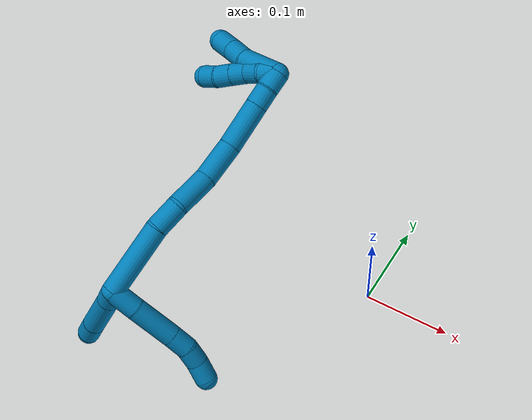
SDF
<sdf version="1.7">
 <world name="default">
  <model name="9">
   <static>0</static>
   <link name="9">
    <collision name="collision-cylinder-e_1_2_8">
     <pose>0.002015 0.000682 -0.015187 -3.0967 0.131763 -2.48558</pose>
     <geometry><cylinder><radius>0.0125</radius><length>0.030671</length></cylinder></geometry>
     <surface>
      <friction><ode><mu>1.16</mu><mu2>1.16</mu2><slip1>0</slip1><slip2>0</slip2></ode></friction>
      <contact><ode><kp>1e+06</kp><kd>1</kd><max_vel>0</max_vel><min_depth>0.001</min_depth></ode></contact>
     </surface>
    </collision>
    <visual name="visual-cylinder-e_1_2_8">
     <pose>0.002015 0.000682 -0.015187 -3.0967 0.131763 -2.48558</pose>
     <geometry><cylinder><radius>0.0125</radius><length>0.030671</length></cylinder></geometry>
     <material><ambient>0 0.490196 0.709804 1</ambient></material>
    </visual>
    <collision name="collision-cylinder-e_2_8_9">
     <pose>0.005603 0.005102 -0.055806 -2.99569 0.061147 -0.79268</pose>
     <geometry><cylinder><radius>0.0125</radius><length>0.051504</length></cylinder></geometry>
     <surface>
      <friction><ode><mu>1.16</mu><mu2>1.16</mu2><slip1>0</slip1><slip2>0</slip2></ode></friction>
      <contact><ode><kp>1e+06</kp><kd>1</kd><max_vel>0</max_vel><min_depth>0.001</min_depth></ode></contact>
     </surface>
    </collision>
    <visual name="visual-cylinder-e_2_8_9">
     <pose>0.005603 0.005102 -0.055806 -2.99569 0.061147 -0.79268</pose>
     <geometry><cylinder><radius>0.0125</radius><length>0.051504</length></cylinder></geometry>
     <material><ambient>0 0.490196 0.709804 1</ambient></material>
    </visual>
    <collision name="collision-cylinder-e_3_9_10">
     <pose>0.007588 0.010397 -0.092951 -3.00931 0.0348 -0.513843</pose>
     <geometry><cylinder><radius>0.0125</radius><length>0.02365</length></cylinder></geometry>
     <surface>
      <friction><ode><mu>1.16</mu><mu2>1.16</mu2><slip1>0</slip1><slip2>0</slip2></ode></friction>
      <contact><ode><kp>1e+06</kp><kd>1</kd><max_vel>0</max_vel><min_depth>0.001</min_depth></ode></contact>
     </surface>
    </collision>
    <visual name="visual-cylinder-e_3_9_10">
     <pose>0.007588 0.010397 -0.092951 -3.00931 0.0348 -0.513843</pose>
     <geometry><cylinder><radius>0.0125</radius><length>0.02365</length></cylinder></geometry>
     <material><ambient>0 0.490196 0.709804 1</ambient></material>
    </visual>
    <collision name="collision-cylinder-e_4_10_11">
     <pose>0.005672 0.012723 -0.114797 -3.06605 -0.225208 2.49659</pose>
     <geometry><cylinder><radius>0.0125</radius><length>0.020847</length></cylinder></geometry>
     <surface>
      <friction><ode><mu>1.16</mu><mu2>1.16</mu2><slip1>0</slip1><slip2>0</slip2></ode></friction>
      <contact><ode><kp>1e+06</kp><kd>1</kd><max_vel>0</max_vel><min_depth>0.001</min_depth></ode></contact>
     </surface>
    </collision>
    <visual name="visual-cylinder-e_4_10_11">
     <pose>0.005672 0.012723 -0.114797 -3.06605 -0.225208 2.49659</pose>
     <geometry><cylinder><radius>0.0125</radius><length>0.020847</length></cylinder></geometry>
     <material><ambient>0 0.490196 0.709804 1</ambient></material>
    </visual>
    <collision name="collision-cylinder-e_5_11_6">
     <pose>0.000354 0.0125 -0.136159 3.0537 -0.259292 -2.49101</pose>
     <geometry><cylinder><radius>0.0125</radius><length>0.023327</length></cylinder></geometry>
     <surface>
      <friction><ode><mu>1.16</mu><mu2>1.16</mu2><slip1>0</slip1><slip2>0</slip2></ode></friction>
      <contact><ode><kp>1e+06</kp><kd>1</kd><max_vel>0</max_vel><min_depth>0.001</min_depth></ode></contact>
     </surface>
    </collision>
    <visual name="visual-cylinder-e_5_11_6">
     <pose>0.000354 0.0125 -0.136159 3.0537 -0.259292 -2.49101</pose>
     <geometry><cylinder><radius>0.0125</radius><length>0.023327</length></cylinder></geometry>
     <material><ambient>0 0.490196 0.709804 1</ambient></material>
    </visual>
    <collision name="collision-cylinder-e_1_2_12">
     <pose>-0.009171 0.003161 -0.003844 -2.45336 -1.07362 2.05752</pose>
     <geometry><cylinder><radius>0.0125</radius><length>0.020868</length></cylinder></geometry>
     <surface>
      <friction><ode><mu>1.16</mu><mu2>1.16</mu2><slip1>0</slip1><slip2>0</slip2></ode></friction>
      <contact><ode><kp>1e+06</kp><kd>1</kd><max_vel>0</max_vel><min_depth>0.001</min_depth></ode></contact>
     </surface>
    </collision>
    <visual name="visual-cylinder-e_1_2_12">
     <pose>-0.009171 0.003161 -0.003844 -2.45336 -1.07362 2.05752</pose>
     <geometry><cylinder><radius>0.0125</radius><length>0.020868</length></cylinder></geometry>
     <material><ambient>0 0.490196 0.709804 1</ambient></material>
    </visual>
    <collision name="collision-cylinder-e_2_12_13">
     <pose>-0.043283 0.013344 -0.016593 -2.47392 -1.14404 2.15336</pose>
     <geometry><cylinder><radius>0.0125</radius><length>0.054798</length></cylinder></geometry>
     <surface>
      <friction><ode><mu>1.16</mu><mu2>1.16</mu2><slip1>0</slip1><slip2>0</slip2></ode></friction>
      <contact><ode><kp>1e+06</kp><kd>1</kd><max_vel>0</max_vel><min_depth>0.001</min_depth></ode></contact>
     </surface>
    </collision>
    <visual name="visual-cylinder-e_2_12_13">
     <pose>-0.043283 0.013344 -0.016593 -2.47392 -1.14404 2.15336</pose>
     <geometry><cylinder><radius>0.0125</radius><length>0.054798</length></cylinder></geometry>
     <material><ambient>0 0.490196 0.709804 1</ambient></material>
    </visual>
    <collision name="collision-cylinder-e_3_13_5">
     <pose>-0.079077 0.024026 -0.029605 -2.41352 -1.10166 2.03116</pose>
     <geometry><cylinder><radius>0.0125</radius><length>0.024334</length></cylinder></geometry>
     <surface>
      <friction><ode><mu>1.16</mu><mu2>1.16</mu2><slip1>0</slip1><slip2>0</slip2></ode></friction>
      <contact><ode><kp>1e+06</kp><kd>1</kd><max_vel>0</max_vel><min_depth>0.001</min_depth></ode></contact>
     </surface>
    </collision>
    <visual name="visual-cylinder-e_3_13_5">
     <pose>-0.079077 0.024026 -0.029605 -2.41352 -1.10166 2.03116</pose>
     <geometry><cylinder><radius>0.0125</radius><length>0.024334</length></cylinder></geometry>
     <material><ambient>0 0.490196 0.709804 1</ambient></material>
    </visual>
    <collision name="collision-cylinder-e_1_2_14">
     <pose>0.034513 0.021457 0.009154 -1.16757 0.976412 -0.674833</pose>
     <geometry><cylinder><radius>0.0125</radius><length>0.083314</length></cylinder></geometry>
     <surface>
      <friction><ode><mu>1.16</mu><mu2>1.16</mu2><slip1>0</slip1><slip2>0</slip2></ode></friction>
      <contact><ode><kp>1e+06</kp><kd>1</kd><max_vel>0</max_vel><min_depth>0.001</min_depth></ode></contact>
     </surface>
    </collision>
    <visual name="visual-cylinder-e_1_2_14">
     <pose>0.034513 0.021457 0.009154 -1.16757 0.976412 -0.674833</pose>
     <geometry><cylinder><radius>0.0125</radius><length>0.083314</length></cylinder></geometry>
     <material><ambient>0 0.490196 0.709804 1</ambient></material>
    </visual>
    <collision name="collision-cylinder-e_2_14_15">
     <pose>0.081529 0.053303 0.01898 -1.50615 0.876473 -0.827794</pose>
     <geometry><cylinder><radius>0.0125</radius><length>0.03254</length></cylinder></geometry>
     <surface>
      <friction><ode><mu>1.16</mu><mu2>1.16</mu2><slip1>0</slip1><slip2>0</slip2></ode></friction>
      <contact><ode><kp>1e+06</kp><kd>1</kd><max_vel>0</max_vel><min_depth>0.001</min_depth></ode></contact>
     </surface>
    </collision>
    <visual name="visual-cylinder-e_2_14_15">
     <pose>0.081529 0.053303 0.01898 -1.50615 0.876473 -0.827794</pose>
     <geometry><cylinder><radius>0.0125</radius><length>0.03254</length></cylinder></geometry>
     <material><ambient>0 0.490196 0.709804 1</ambient></material>
    </visual>
    <collision name="collision-cylinder-e_3_15_16">
     <pose>0.106593 0.081927 0.018264 -1.64679 0.601826 -0.646256</pose>
     <geometry><cylinder><radius>0.0125</radius><length>0.044372</length></cylinder></geometry>
     <surface>
      <friction><ode><mu>1.16</mu><mu2>1.16</mu2><slip1>0</slip1><slip2>0</slip2></ode></friction>
      <contact><ode><kp>1e+06</kp><kd>1</kd><max_vel>0</max_vel><min_depth>0.001</min_depth></ode></contact>
     </surface>
    </collision>
    <visual name="visual-cylinder-e_3_15_16">
     <pose>0.106593 0.081927 0.018264 -1.64679 0.601826 -0.646256</pose>
     <geometry><cylinder><radius>0.0125</radius><length>0.044372</length></cylinder></geometry>
     <material><ambient>0 0.490196 0.709804 1</ambient></material>
    </visual>
    <collision name="collision-cylinder-e_4_16_17">
     <pose>0.133795 0.116935 0.019449 -1.41852 0.711916 -0.617754</pose>
     <geometry><cylinder><radius>0.0125</radius><length>0.044824</length></cylinder></geometry>
     <surface>
      <friction><ode><mu>1.16</mu><mu2>1.16</mu2><slip1>0</slip1><slip2>0</slip2></ode></friction>
      <contact><ode><kp>1e+06</kp><kd>1</kd><max_vel>0</max_vel><min_depth>0.001</min_depth></ode></contact>
     </surface>
    </collision>
    <visual name="visual-cylinder-e_4_16_17">
     <pose>0.133795 0.116935 0.019449 -1.41852 0.711916 -0.617754</pose>
     <geometry><cylinder><radius>0.0125</radius><length>0.044824</length></cylinder></geometry>
     <material><ambient>0 0.490196 0.709804 1</ambient></material>
    </visual>
    <collision name="collision-cylinder-e_5_17_18">
     <pose>0.168319 0.150105 0.027809 -1.23157 0.852196 -0.621526</pose>
     <geometry><cylinder><radius>0.0125</radius><length>0.052827</length></cylinder></geometry>
     <surface>
      <friction><ode><mu>1.16</mu><mu2>1.16</mu2><slip1>0</slip1><slip2>0</slip2></ode></friction>
      <contact><ode><kp>1e+06</kp><kd>1</kd><max_vel>0</max_vel><min_depth>0.001</min_depth></ode></contact>
     </surface>
    </collision>
    <visual name="visual-cylinder-e_5_17_18">
     <pose>0.168319 0.150105 0.027809 -1.23157 0.852196 -0.621526</pose>
     <geometry><cylinder><radius>0.0125</radius><length>0.052827</length></cylinder></geometry>
     <material><ambient>0 0.490196 0.709804 1</ambient></material>
    </visual>
    <collision name="collision-cylinder-e_6_18_19">
     <pose>0.196298 0.173194 0.035955 -1.2318 0.851257 -0.620941</pose>
     <geometry><cylinder><radius>0.0125</radius><length>0.021531</length></cylinder></geometry>
     <surface>
      <friction><ode><mu>1.16</mu><mu2>1.16</mu2><slip1>0</slip1><slip2>0</slip2></ode></friction>
      <contact><ode><kp>1e+06</kp><kd>1</kd><max_vel>0</max_vel><min_depth>0.001</min_depth></ode></contact>
     </surface>
    </collision>
    <visual name="visual-cylinder-e_6_18_19">
     <pose>0.196298 0.173194 0.035955 -1.2318 0.851257 -0.620941</pose>
     <geometry><cylinder><radius>0.0125</radius><length>0.021531</length></cylinder></geometry>
     <material><ambient>0 0.490196 0.709804 1</ambient></material>
    </visual>
    <collision name="collision-cylinder-e_7_19_1">
     <pose>0.211354 0.187284 0.039995 -1.3474 0.742259 -0.602426</pose>
     <geometry><cylinder><radius>0.0125</radius><length>0.020591</length></cylinder></geometry>
     <surface>
      <friction><ode><mu>1.16</mu><mu2>1.16</mu2><slip1>0</slip1><slip2>0</slip2></ode></friction>
      <contact><ode><kp>1e+06</kp><kd>1</kd><max_vel>0</max_vel><min_depth>0.001</min_depth></ode></contact>
     </surface>
    </collision>
    <visual name="visual-cylinder-e_7_19_1">
     <pose>0.211354 0.187284 0.039995 -1.3474 0.742259 -0.602426</pose>
     <geometry><cylinder><radius>0.0125</radius><length>0.020591</length></cylinder></geometry>
     <material><ambient>0 0.490196 0.709804 1</ambient></material>
    </visual>
    <collision name="collision-cylinder-e_1_1_20">
     <pose>0.201461 0.20748 0.055858 -0.734168 -0.722885 0.288708</pose>
     <geometry><cylinder><radius>0.0125</radius><length>0.050947</length></cylinder></geometry>
     <surface>
      <friction><ode><mu>1.16</mu><mu2>1.16</mu2><slip1>0</slip1><slip2>0</slip2></ode></friction>
      <contact><ode><kp>1e+06</kp><kd>1</kd><max_vel>0</max_vel><min_depth>0.001</min_depth></ode></contact>
     </surface>
    </collision>
    <visual name="visual-cylinder-e_1_1_20">
     <pose>0.201461 0.20748 0.055858 -0.734168 -0.722885 0.288708</pose>
     <geometry><cylinder><radius>0.0125</radius><length>0.050947</length></cylinder></geometry>
     <material><ambient>0 0.490196 0.709804 1</ambient></material>
    </visual>
    <collision name="collision-cylinder-e_2_20_21">
     <pose>0.178395 0.228306 0.076644 -0.882353 -0.538754 0.259285</pose>
     <geometry><cylinder><radius>0.0125</radius><length>0.02422</length></cylinder></geometry>
     <surface>
      <friction><ode><mu>1.16</mu><mu2>1.16</mu2><slip1>0</slip1><slip2>0</slip2></ode></friction>
      <contact><ode><kp>1e+06</kp><kd>1</kd><max_vel>0</max_vel><min_depth>0.001</min_depth></ode></contact>
     </surface>
    </collision>
    <visual name="visual-cylinder-e_2_20_21">
     <pose>0.178395 0.228306 0.076644 -0.882353 -0.538754 0.259285</pose>
     <geometry><cylinder><radius>0.0125</radius><length>0.02422</length></cylinder></geometry>
     <material><ambient>0 0.490196 0.709804 1</ambient></material>
    </visual>
    <collision name="collision-cylinder-e_3_21_4">
     <pose>0.165545 0.244275 0.090106 -0.858544 -0.563978 0.263684</pose>
     <geometry><cylinder><radius>0.0125</radius><length>0.024832</length></cylinder></geometry>
     <surface>
      <friction><ode><mu>1.16</mu><mu2>1.16</mu2><slip1>0</slip1><slip2>0</slip2></ode></friction>
      <contact><ode><kp>1e+06</kp><kd>1</kd><max_vel>0</max_vel><min_depth>0.001</min_depth></ode></contact>
     </surface>
    </collision>
    <visual name="visual-cylinder-e_3_21_4">
     <pose>0.165545 0.244275 0.090106 -0.858544 -0.563978 0.263684</pose>
     <geometry><cylinder><radius>0.0125</radius><length>0.024832</length></cylinder></geometry>
     <material><ambient>0 0.490196 0.709804 1</ambient></material>
    </visual>
    <collision name="collision-cylinder-e_1_1_22">
     <pose>0.210141 0.19715 0.046884 -0.442585 -0.956597 0.232229</pose>
     <geometry><cylinder><radius>0.0125</radius><length>0.02</length></cylinder></geometry>
     <surface>
      <friction><ode><mu>1.16</mu><mu2>1.16</mu2><slip1>0</slip1><slip2>0</slip2></ode></friction>
      <contact><ode><kp>1e+06</kp><kd>1</kd><max_vel>0</max_vel><min_depth>0.001</min_depth></ode></contact>
     </surface>
    </collision>
    <visual name="visual-cylinder-e_1_1_22">
     <pose>0.210141 0.19715 0.046884 -0.442585 -0.956597 0.232229</pose>
     <geometry><cylinder><radius>0.0125</radius><length>0.02</length></cylinder></geometry>
     <material><ambient>0 0.490196 0.709804 1</ambient></material>
    </visual>
    <collision name="collision-cylinder-e_2_22_23">
     <pose>0.193496 0.203671 0.055526 -0.867722 -1.01082 0.501927</pose>
     <geometry><cylinder><radius>0.0125</radius><length>0.02</length></cylinder></geometry>
     <surface>
      <friction><ode><mu>1.16</mu><mu2>1.16</mu2><slip1>0</slip1><slip2>0</slip2></ode></friction>
      <contact><ode><kp>1e+06</kp><kd>1</kd><max_vel>0</max_vel><min_depth>0.001</min_depth></ode></contact>
     </surface>
    </collision>
    <visual name="visual-cylinder-e_2_22_23">
     <pose>0.193496 0.203671 0.055526 -0.867722 -1.01082 0.501927</pose>
     <geometry><cylinder><radius>0.0125</radius><length>0.02</length></cylinder></geometry>
     <material><ambient>0 0.490196 0.709804 1</ambient></material>
    </visual>
    <collision name="collision-cylinder-e_3_23_24">
     <pose>0.175873 0.209385 0.062638 -0.424573 -1.15541 0.279182</pose>
     <geometry><cylinder><radius>0.0125</radius><length>0.02</length></cylinder></geometry>
     <surface>
      <friction><ode><mu>1.16</mu><mu2>1.16</mu2><slip1>0</slip1><slip2>0</slip2></ode></friction>
      <contact><ode><kp>1e+06</kp><kd>1</kd><max_vel>0</max_vel><min_depth>0.001</min_depth></ode></contact>
     </surface>
    </collision>
    <visual name="visual-cylinder-e_3_23_24">
     <pose>0.175873 0.209385 0.062638 -0.424573 -1.15541 0.279182</pose>
     <geometry><cylinder><radius>0.0125</radius><length>0.02</length></cylinder></geometry>
     <material><ambient>0 0.490196 0.709804 1</ambient></material>
    </visual>
    <collision name="collision-cylinder-e_4_24_25">
     <pose>0.157524 0.212527 0.069944 -0.387107 -1.16811 0.257677</pose>
     <geometry><cylinder><radius>0.0125</radius><length>0.02</length></cylinder></geometry>
     <surface>
      <friction><ode><mu>1.16</mu><mu2>1.16</mu2><slip1>0</slip1><slip2>0</slip2></ode></friction>
      <contact><ode><kp>1e+06</kp><kd>1</kd><max_vel>0</max_vel><min_depth>0.001</min_depth></ode></contact>
     </surface>
    </collision>
    <visual name="visual-cylinder-e_4_24_25">
     <pose>0.157524 0.212527 0.069944 -0.387107 -1.16811 0.257677</pose>
     <geometry><cylinder><radius>0.0125</radius><length>0.02</length></cylinder></geometry>
     <material><ambient>0 0.490196 0.709804 1</ambient></material>
    </visual>
    <collision name="collision-cylinder-e_5_25_3">
     <pose>0.139778 0.217558 0.077363 -0.752927 -1.02462 0.437534</pose>
     <geometry><cylinder><radius>0.0125</radius><length>0.02</length></cylinder></geometry>
     <surface>
      <friction><ode><mu>1.16</mu><mu2>1.16</mu2><slip1>0</slip1><slip2>0</slip2></ode></friction>
      <contact><ode><kp>1e+06</kp><kd>1</kd><max_vel>0</max_vel><min_depth>0.001</min_depth></ode></contact>
     </surface>
    </collision>
    <visual name="visual-cylinder-e_5_25_3">
     <pose>0.139778 0.217558 0.077363 -0.752927 -1.02462 0.437534</pose>
     <geometry><cylinder><radius>0.0125</radius><length>0.02</length></cylinder></geometry>
     <material><ambient>0 0.490196 0.709804 1</ambient></material>
    </visual>
    <collision name="collision-sphere-3">
     <pose>0.131233 0.22111 0.081153 0 -0 0</pose>
     <geometry><sphere><radius>0.0125</radius></sphere></geometry>
     <surface>
      <friction><ode><mu>1.16</mu><mu2>1.16</mu2><slip1>0</slip1><slip2>0</slip2></ode></friction>
      <contact><ode><kp>1e+06</kp><kd>1</kd><max_vel>0</max_vel><min_depth>0.001</min_depth></ode></contact>
     </surface>
    </collision>
    <visual name="visual-sphere-3">
     <pose>0.131233 0.22111 0.081153 0 -0 0</pose>
     <geometry><sphere><radius>0.0125</radius></sphere></geometry>
     <material><ambient>0 0.490196 0.709804 1</ambient></material>
    </visual>
    <collision name="collision-sphere-25">
     <pose>0.148324 0.214006 0.073573 0 -0 0</pose>
     <geometry><sphere><radius>0.0125</radius></sphere></geometry>
     <surface>
      <friction><ode><mu>1.16</mu><mu2>1.16</mu2><slip1>0</slip1><slip2>0</slip2></ode></friction>
      <contact><ode><kp>1e+06</kp><kd>1</kd><max_vel>0</max_vel><min_depth>0.001</min_depth></ode></contact>
     </surface>
    </collision>
    <visual name="visual-sphere-25">
     <pose>0.148324 0.214006 0.073573 0 -0 0</pose>
     <geometry><sphere><radius>0.0125</radius></sphere></geometry>
     <material><ambient>0 0.490196 0.709804 1</ambient></material>
    </visual>
    <collision name="collision-sphere-24">
     <pose>0.166724 0.211047 0.066315 0 -0 0</pose>
     <geometry><sphere><radius>0.0125</radius></sphere></geometry>
     <surface>
      <friction><ode><mu>1.16</mu><mu2>1.16</mu2><slip1>0</slip1><slip2>0</slip2></ode></friction>
      <contact><ode><kp>1e+06</kp><kd>1</kd><max_vel>0</max_vel><min_depth>0.001</min_depth></ode></contact>
     </surface>
    </collision>
    <visual name="visual-sphere-24">
     <pose>0.166724 0.211047 0.066315 0 -0 0</pose>
     <geometry><sphere><radius>0.0125</radius></sphere></geometry>
     <material><ambient>0 0.490196 0.709804 1</ambient></material>
    </visual>
    <collision name="collision-sphere-23">
     <pose>0.185023 0.207723 0.05896 0 -0 0</pose>
     <geometry><sphere><radius>0.0125</radius></sphere></geometry>
     <surface>
      <friction><ode><mu>1.16</mu><mu2>1.16</mu2><slip1>0</slip1><slip2>0</slip2></ode></friction>
      <contact><ode><kp>1e+06</kp><kd>1</kd><max_vel>0</max_vel><min_depth>0.001</min_depth></ode></contact>
     </surface>
    </collision>
    <visual name="visual-sphere-23">
     <pose>0.185023 0.207723 0.05896 0 -0 0</pose>
     <geometry><sphere><radius>0.0125</radius></sphere></geometry>
     <material><ambient>0 0.490196 0.709804 1</ambient></material>
    </visual>
    <collision name="collision-sphere-22">
     <pose>0.201968 0.199618 0.052092 0 -0 0</pose>
     <geometry><sphere><radius>0.0125</radius></sphere></geometry>
     <surface>
      <friction><ode><mu>1.16</mu><mu2>1.16</mu2><slip1>0</slip1><slip2>0</slip2></ode></friction>
      <contact><ode><kp>1e+06</kp><kd>1</kd><max_vel>0</max_vel><min_depth>0.001</min_depth></ode></contact>
     </surface>
    </collision>
    <visual name="visual-sphere-22">
     <pose>0.201968 0.199618 0.052092 0 -0 0</pose>
     <geometry><sphere><radius>0.0125</radius></sphere></geometry>
     <material><ambient>0 0.490196 0.709804 1</ambient></material>
    </visual>
    <collision name="collision-sphere-4">
     <pose>0.158908 0.252218 0.096963 0 -0 0</pose>
     <geometry><sphere><radius>0.0125</radius></sphere></geometry>
     <surface>
      <friction><ode><mu>1.16</mu><mu2>1.16</mu2><slip1>0</slip1><slip2>0</slip2></ode></friction>
      <contact><ode><kp>1e+06</kp><kd>1</kd><max_vel>0</max_vel><min_depth>0.001</min_depth></ode></contact>
     </surface>
    </collision>
    <visual name="visual-sphere-4">
     <pose>0.158908 0.252218 0.096963 0 -0 0</pose>
     <geometry><sphere><radius>0.0125</radius></sphere></geometry>
     <material><ambient>0 0.490196 0.709804 1</ambient></material>
    </visual>
    <collision name="collision-sphere-21">
     <pose>0.172182 0.236333 0.083248 0 -0 0</pose>
     <geometry><sphere><radius>0.0125</radius></sphere></geometry>
     <surface>
      <friction><ode><mu>1.16</mu><mu2>1.16</mu2><slip1>0</slip1><slip2>0</slip2></ode></friction>
      <contact><ode><kp>1e+06</kp><kd>1</kd><max_vel>0</max_vel><min_depth>0.001</min_depth></ode></contact>
     </surface>
    </collision>
    <visual name="visual-sphere-21">
     <pose>0.172182 0.236333 0.083248 0 -0 0</pose>
     <geometry><sphere><radius>0.0125</radius></sphere></geometry>
     <material><ambient>0 0.490196 0.709804 1</ambient></material>
    </visual>
    <collision name="collision-sphere-20">
     <pose>0.184609 0.220279 0.070039 0 -0 0</pose>
     <geometry><sphere><radius>0.0125</radius></sphere></geometry>
     <surface>
      <friction><ode><mu>1.16</mu><mu2>1.16</mu2><slip1>0</slip1><slip2>0</slip2></ode></friction>
      <contact><ode><kp>1e+06</kp><kd>1</kd><max_vel>0</max_vel><min_depth>0.001</min_depth></ode></contact>
     </surface>
    </collision>
    <visual name="visual-sphere-20">
     <pose>0.184609 0.220279 0.070039 0 -0 0</pose>
     <geometry><sphere><radius>0.0125</radius></sphere></geometry>
     <material><ambient>0 0.490196 0.709804 1</ambient></material>
    </visual>
    <collision name="collision-sphere-6">
     <pose>-0.002636 0.01151 -0.147389 0 -0 0</pose>
     <geometry><sphere><radius>0.0125</radius></sphere></geometry>
     <surface>
      <friction><ode><mu>1.16</mu><mu2>1.16</mu2><slip1>0</slip1><slip2>0</slip2></ode></friction>
      <contact><ode><kp>1e+06</kp><kd>1</kd><max_vel>0</max_vel><min_depth>0.001</min_depth></ode></contact>
     </surface>
    </collision>
    <visual name="visual-sphere-6">
     <pose>-0.002636 0.01151 -0.147389 0 -0 0</pose>
     <geometry><sphere><radius>0.0125</radius></sphere></geometry>
     <material><ambient>0 0.490196 0.709804 1</ambient></material>
    </visual>
    <collision name="collision-sphere-11">
     <pose>0.003345 0.013489 -0.124929 0 -0 0</pose>
     <geometry><sphere><radius>0.0125</radius></sphere></geometry>
     <surface>
      <friction><ode><mu>1.16</mu><mu2>1.16</mu2><slip1>0</slip1><slip2>0</slip2></ode></friction>
      <contact><ode><kp>1e+06</kp><kd>1</kd><max_vel>0</max_vel><min_depth>0.001</min_depth></ode></contact>
     </surface>
    </collision>
    <visual name="visual-sphere-11">
     <pose>0.003345 0.013489 -0.124929 0 -0 0</pose>
     <geometry><sphere><radius>0.0125</radius></sphere></geometry>
     <material><ambient>0 0.490196 0.709804 1</ambient></material>
    </visual>
    <collision name="collision-sphere-10">
     <pose>0.008 0.011956 -0.104666 0 -0 0</pose>
     <geometry><sphere><radius>0.0125</radius></sphere></geometry>
     <surface>
      <friction><ode><mu>1.16</mu><mu2>1.16</mu2><slip1>0</slip1><slip2>0</slip2></ode></friction>
      <contact><ode><kp>1e+06</kp><kd>1</kd><max_vel>0</max_vel><min_depth>0.001</min_depth></ode></contact>
     </surface>
    </collision>
    <visual name="visual-sphere-10">
     <pose>0.008 0.011956 -0.104666 0 -0 0</pose>
     <geometry><sphere><radius>0.0125</radius></sphere></geometry>
     <material><ambient>0 0.490196 0.709804 1</ambient></material>
    </visual>
    <collision name="collision-sphere-9">
     <pose>0.007177 0.008839 -0.081237 0 -0 0</pose>
     <geometry><sphere><radius>0.0125</radius></sphere></geometry>
     <surface>
      <friction><ode><mu>1.16</mu><mu2>1.16</mu2><slip1>0</slip1><slip2>0</slip2></ode></friction>
      <contact><ode><kp>1e+06</kp><kd>1</kd><max_vel>0</max_vel><min_depth>0.001</min_depth></ode></contact>
     </surface>
    </collision>
    <visual name="visual-sphere-9">
     <pose>0.007177 0.008839 -0.081237 0 -0 0</pose>
     <geometry><sphere><radius>0.0125</radius></sphere></geometry>
     <material><ambient>0 0.490196 0.709804 1</ambient></material>
    </visual>
    <collision name="collision-sphere-2">
     <geometry><sphere><radius>0.0125</radius></sphere></geometry>
     <surface>
      <friction><ode><mu>1.16</mu><mu2>1.16</mu2><slip1>0</slip1><slip2>0</slip2></ode></friction>
      <contact><ode><kp>1e+06</kp><kd>1</kd><max_vel>0</max_vel><min_depth>0.001</min_depth></ode></contact>
     </surface>
    </collision>
    <visual name="visual-sphere-2">
     <geometry><sphere><radius>0.0125</radius></sphere></geometry>
     <material><ambient>0 0.490196 0.709804 1</ambient></material>
    </visual>
    <collision name="collision-sphere-19">
     <pose>0.204395 0.179885 0.038314 0 -0 0</pose>
     <geometry><sphere><radius>0.0125</radius></sphere></geometry>
     <surface>
      <friction><ode><mu>1.16</mu><mu2>1.16</mu2><slip1>0</slip1><slip2>0</slip2></ode></friction>
      <contact><ode><kp>1e+06</kp><kd>1</kd><max_vel>0</max_vel><min_depth>0.001</min_depth></ode></contact>
     </surface>
    </collision>
    <visual name="visual-sphere-19">
     <pose>0.204395 0.179885 0.038314 0 -0 0</pose>
     <geometry><sphere><radius>0.0125</radius></sphere></geometry>
     <material><ambient>0 0.490196 0.709804 1</ambient></material>
    </visual>
    <collision name="collision-sphere-8">
     <pose>0.00403 0.001365 -0.030375 0 -0 0</pose>
     <geometry><sphere><radius>0.0125</radius></sphere></geometry>
     <surface>
      <friction><ode><mu>1.16</mu><mu2>1.16</mu2><slip1>0</slip1><slip2>0</slip2></ode></friction>
      <contact><ode><kp>1e+06</kp><kd>1</kd><max_vel>0</max_vel><min_depth>0.001</min_depth></ode></contact>
     </surface>
    </collision>
    <visual name="visual-sphere-8">
     <pose>0.00403 0.001365 -0.030375 0 -0 0</pose>
     <geometry><sphere><radius>0.0125</radius></sphere></geometry>
     <material><ambient>0 0.490196 0.709804 1</ambient></material>
    </visual>
    <collision name="collision-sphere-12">
     <pose>-0.018342 0.006322 -0.007687 0 -0 0</pose>
     <geometry><sphere><radius>0.0125</radius></sphere></geometry>
     <surface>
      <friction><ode><mu>1.16</mu><mu2>1.16</mu2><slip1>0</slip1><slip2>0</slip2></ode></friction>
      <contact><ode><kp>1e+06</kp><kd>1</kd><max_vel>0</max_vel><min_depth>0.001</min_depth></ode></contact>
     </surface>
    </collision>
    <visual name="visual-sphere-12">
     <pose>-0.018342 0.006322 -0.007687 0 -0 0</pose>
     <geometry><sphere><radius>0.0125</radius></sphere></geometry>
     <material><ambient>0 0.490196 0.709804 1</ambient></material>
    </visual>
    <collision name="collision-sphere-13">
     <pose>-0.068225 0.020366 -0.025499 0 -0 0</pose>
     <geometry><sphere><radius>0.0125</radius></sphere></geometry>
     <surface>
      <friction><ode><mu>1.16</mu><mu2>1.16</mu2><slip1>0</slip1><slip2>0</slip2></ode></friction>
      <contact><ode><kp>1e+06</kp><kd>1</kd><max_vel>0</max_vel><min_depth>0.001</min_depth></ode></contact>
     </surface>
    </collision>
    <visual name="visual-sphere-13">
     <pose>-0.068225 0.020366 -0.025499 0 -0 0</pose>
     <geometry><sphere><radius>0.0125</radius></sphere></geometry>
     <material><ambient>0 0.490196 0.709804 1</ambient></material>
    </visual>
    <collision name="collision-sphere-5">
     <pose>-0.08993 0.027687 -0.033711 0 -0 0</pose>
     <geometry><sphere><radius>0.0125</radius></sphere></geometry>
     <surface>
      <friction><ode><mu>1.16</mu><mu2>1.16</mu2><slip1>0</slip1><slip2>0</slip2></ode></friction>
      <contact><ode><kp>1e+06</kp><kd>1</kd><max_vel>0</max_vel><min_depth>0.001</min_depth></ode></contact>
     </surface>
    </collision>
    <visual name="visual-sphere-5">
     <pose>-0.08993 0.027687 -0.033711 0 -0 0</pose>
     <geometry><sphere><radius>0.0125</radius></sphere></geometry>
     <material><ambient>0 0.490196 0.709804 1</ambient></material>
    </visual>
    <collision name="collision-sphere-14">
     <pose>0.069025 0.042914 0.018307 0 -0 0</pose>
     <geometry><sphere><radius>0.0125</radius></sphere></geometry>
     <surface>
      <friction><ode><mu>1.16</mu><mu2>1.16</mu2><slip1>0</slip1><slip2>0</slip2></ode></friction>
      <contact><ode><kp>1e+06</kp><kd>1</kd><max_vel>0</max_vel><min_depth>0.001</min_depth></ode></contact>
     </surface>
    </collision>
    <visual name="visual-sphere-14">
     <pose>0.069025 0.042914 0.018307 0 -0 0</pose>
     <geometry><sphere><radius>0.0125</radius></sphere></geometry>
     <material><ambient>0 0.490196 0.709804 1</ambient></material>
    </visual>
    <collision name="collision-sphere-15">
     <pose>0.094032 0.063692 0.019652 0 -0 0</pose>
     <geometry><sphere><radius>0.0125</radius></sphere></geometry>
     <surface>
      <friction><ode><mu>1.16</mu><mu2>1.16</mu2><slip1>0</slip1><slip2>0</slip2></ode></friction>
      <contact><ode><kp>1e+06</kp><kd>1</kd><max_vel>0</max_vel><min_depth>0.001</min_depth></ode></contact>
     </surface>
    </collision>
    <visual name="visual-sphere-15">
     <pose>0.094032 0.063692 0.019652 0 -0 0</pose>
     <geometry><sphere><radius>0.0125</radius></sphere></geometry>
     <material><ambient>0 0.490196 0.709804 1</ambient></material>
    </visual>
    <collision name="collision-sphere-16">
     <pose>0.119153 0.100163 0.016875 0 -0 0</pose>
     <geometry><sphere><radius>0.0125</radius></sphere></geometry>
     <surface>
      <friction><ode><mu>1.16</mu><mu2>1.16</mu2><slip1>0</slip1><slip2>0</slip2></ode></friction>
      <contact><ode><kp>1e+06</kp><kd>1</kd><max_vel>0</max_vel><min_depth>0.001</min_depth></ode></contact>
     </surface>
    </collision>
    <visual name="visual-sphere-16">
     <pose>0.119153 0.100163 0.016875 0 -0 0</pose>
     <geometry><sphere><radius>0.0125</radius></sphere></geometry>
     <material><ambient>0 0.490196 0.709804 1</ambient></material>
    </visual>
    <collision name="collision-sphere-17">
     <pose>0.148436 0.133707 0.022023 0 -0 0</pose>
     <geometry><sphere><radius>0.0125</radius></sphere></geometry>
     <surface>
      <friction><ode><mu>1.16</mu><mu2>1.16</mu2><slip1>0</slip1><slip2>0</slip2></ode></friction>
      <contact><ode><kp>1e+06</kp><kd>1</kd><max_vel>0</max_vel><min_depth>0.001</min_depth></ode></contact>
     </surface>
    </collision>
    <visual name="visual-sphere-17">
     <pose>0.148436 0.133707 0.022023 0 -0 0</pose>
     <geometry><sphere><radius>0.0125</radius></sphere></geometry>
     <material><ambient>0 0.490196 0.709804 1</ambient></material>
    </visual>
    <collision name="collision-sphere-18">
     <pose>0.188201 0.166503 0.033596 0 -0 0</pose>
     <geometry><sphere><radius>0.0125</radius></sphere></geometry>
     <surface>
      <friction><ode><mu>1.16</mu><mu2>1.16</mu2><slip1>0</slip1><slip2>0</slip2></ode></friction>
      <contact><ode><kp>1e+06</kp><kd>1</kd><max_vel>0</max_vel><min_depth>0.001</min_depth></ode></contact>
     </surface>
    </collision>
    <visual name="visual-sphere-18">
     <pose>0.188201 0.166503 0.033596 0 -0 0</pose>
     <geometry><sphere><radius>0.0125</radius></sphere></geometry>
     <material><ambient>0 0.490196 0.709804 1</ambient></material>
    </visual>
    <collision name="collision-sphere-1">
     <pose>0.218313 0.194682 0.041676 0 -0 0</pose>
     <geometry><sphere><radius>0.0125</radius></sphere></geometry>
     <surface>
      <friction><ode><mu>1.16</mu><mu2>1.16</mu2><slip1>0</slip1><slip2>0</slip2></ode></friction>
      <contact><ode><kp>1e+06</kp><kd>1</kd><max_vel>0</max_vel><min_depth>0.001</min_depth></ode></contact>
     </surface>
    </collision>
    <visual name="visual-sphere-1">
     <pose>0.218313 0.194682 0.041676 0 -0 0</pose>
     <geometry><sphere><radius>0.0125</radius></sphere></geometry>
     <material><ambient>0 0.490196 0.709804 1</ambient></material>
    </visual>
    <inertial>
     <pose>0.088168 0.097805 0.008664 0 -0 0</pose>
     <mass>0.75</mass>
     <inertia>
      <ixx>2.5e-05</ixx>
      <ixy>0</ixy>
      <ixz>0</ixz>
      <iyy>8.3e-05</iyy>
      <iyz>0</iyz>
      <izz>-0.000112</izz>
     </inertia>
    </inertial>
   </link>
   <pose>-0.210341 -0.198343 0.111035 -0.4715 -0.783085 0.59577</pose>
  </model>
 </world>
</sdf>
